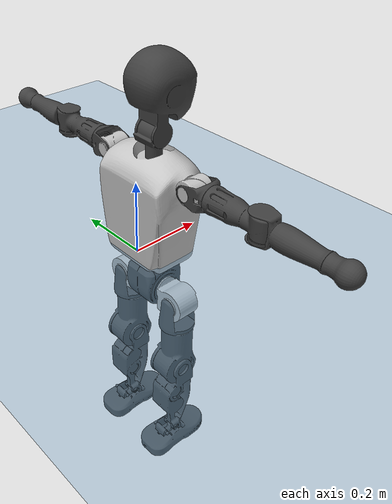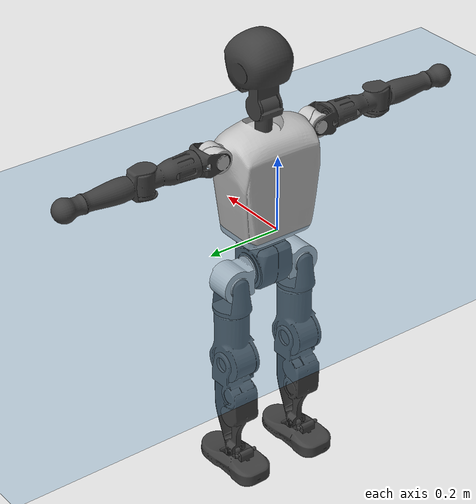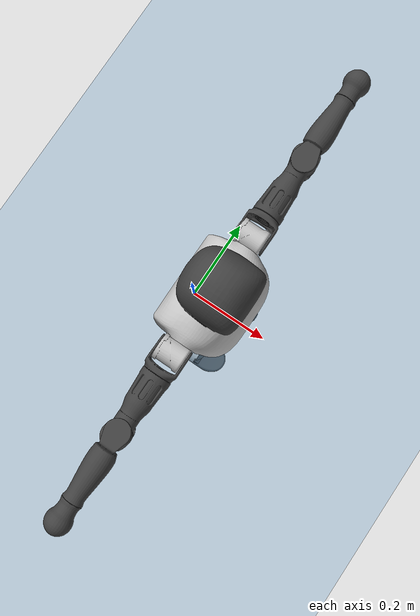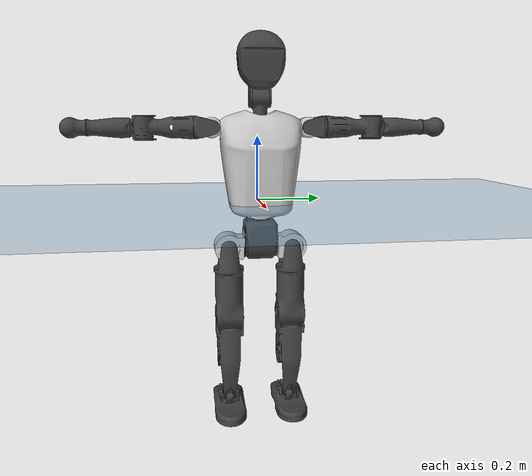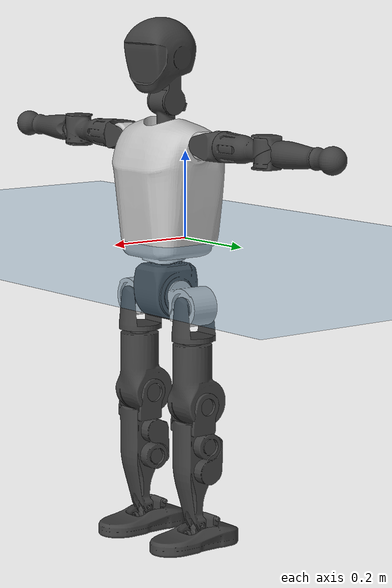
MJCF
<mujoco model="T1">
  <compiler angle="radian" assetdir="assets" balanceinertia="true" inertiafromgeom="false"/>

  <option timestep="0.005" density="1.2" viscosity="2e-05"/>

  <size nkey="1"/>

  <visual>
    <quality shadowsize="8192"/>
    <map shadowclip="0.5"/>
  </visual>

  <default>
    <default class="/">
      <joint armature="0.01" damping="0.01" frictionloss="0.1"/>
      <geom contype="0" conaffinity="0" group="1" solref="-1000 -80"/>
      <site size="0.01 0.005 0.005" group="5"/>
      <general forcelimited="true" biastype="affine" gainprm="25" biasprm="0 -25 -0.6"/>
      <default class="t1">
        <geom rgba="0.25 0.25 0.25 1"/>
        <default class="visual">
          <geom type="mesh" group="2"/>
        </default>
        <default class="collision">
          <geom group="3"/>
        </default>
        <default class="foot">
          <geom size="0.1115 0.05 0.015" type="box" condim="6" group="4" priority="1" solimp="0.015 1 0.015"/>
        </default>
        <default class="reward_collision_sphere">
          <geom group="5" rgba="1 0 0 1"/>
        </default>
      </default>
    </default>
  </default>

  <asset>
    <texture type="skybox" colorspace="auto" name="//unnamed_texture_0" builtin="gradient" rgb1="0.95 0.95 0.95" rgb2="0.95 0.95 0.95" width="100" height="600"/>
    <texture type="2d" colorspace="auto" name="texplane" builtin="checker" rgb1="0.345 0.575 0.748" rgb2="0.345 0.575 0.748" markrgb="1 1 1" width="512" height="512"/>
    <material name="MatPlane" class="/" texture="texplane" texuniform="true" texrepeat="2 2" specular="0.9"/>
    <mesh name="Trunk" class="/" file="Trunk.stl"/>
    <mesh name="H1" class="/" file="H1.stl"/>
    <mesh name="H2" class="/" file="H2.stl"/>
    <mesh name="AL1" class="/" file="AL1.stl"/>
    <mesh name="AL2" class="/" file="AL2.stl"/>
    <mesh name="AL3" class="/" file="AL3.stl"/>
    <mesh name="left_hand_link" class="/" file="left_hand_link.stl"/>
    <mesh name="AR1" class="/" file="AR1.stl"/>
    <mesh name="AR2" class="/" file="AR2.stl"/>
    <mesh name="AR3" class="/" file="AR3.stl"/>
    <mesh name="right_hand_link" class="/" file="right_hand_link.stl"/>
    <mesh name="Waist" class="/" file="Waist.stl"/>
    <mesh name="Hip_Pitch_Left" class="/" file="Hip_Pitch_Left.stl"/>
    <mesh name="Hip_Roll_Left" class="/" file="Hip_Roll_Left.stl"/>
    <mesh name="Hip_Yaw_Left" class="/" file="Hip_Yaw_Left.stl"/>
    <mesh name="Shank_Left" class="/" file="Shank_Left.stl"/>
    <mesh name="Ankle_Cross_Left" class="/" file="Ankle_Cross_Left.stl"/>
    <mesh name="left_foot_link" class="/" file="left_foot_link.stl"/>
    <mesh name="Hip_Pitch_Right" class="/" file="Hip_Pitch_Right.stl"/>
    <mesh name="Hip_Roll_Right" class="/" file="Hip_Roll_Right.stl"/>
    <mesh name="Hip_Yaw_Right" class="/" file="Hip_Yaw_Right.stl"/>
    <mesh name="Shank_Right" class="/" file="Shank_Right.stl"/>
    <mesh name="Ankle_Cross_Right" class="/" file="Ankle_Cross_Right.stl"/>
    <mesh name="right_foot_link" class="/" file="right_foot_link.stl"/>
  </asset>

  <worldbody>
    <geom name="floor" class="/" size="100 100 0.125" type="plane" group="0" material="MatPlane"/>
    <light name="toplight_shadow" class="/" pos="0 0 5" dir="0.0990148 0.0990148 -0.990148" type="directional" ambient="0.04 0.04 0.04" diffuse="0.55 0.55 0.55" specular="0.12 0.12 0.12"/>
    <light name="toplight_fill" class="/" pos="0 0 5" dir="0.0990148 0.0990148 -0.990148" type="directional" castshadow="false" ambient="0.04 0.04 0.04" diffuse="0.3 0.3 0.3" specular="0.08 0.08 0.08"/>
    <body name="trunk" childclass="t1" pos="0.000217364 0.000672136 -0.000170295" quat="1 -2.11281e-05 5.95691e-06 -1.19245e-05">
      <inertial pos="0.0488312 -6.83181e-05 0.109814" quat="0.99995 0.000946264 -0.00996553 0.000671048" mass="10.284" diaginertia="0.0495544 0.0570148 0.0669056"/>
      <joint name="//unnamed_joint_0" type="free" armature="0" damping="0" frictionloss="0"/>
      <geom name="//unnamed_geom_1" class="visual" rgba="0.76 0.76 0.76 1" mesh="Trunk"/>
      <geom name="//unnamed_geom_2" class="collision" size="0.0716704 0.0955605 0.143341" pos="0.0531637 0 0.124768" type="box"/>
      <geom name="//unnamed_geom_3" class="reward_collision_sphere" size="0.109895" pos="0.0531637 0 0.103973"/>
      <geom name="//unnamed_geom_4" class="reward_collision_sphere" size="0.0143341" pos="0.0531637 0.0799867 0"/>
      <geom name="//unnamed_geom_5" class="reward_collision_sphere" size="0.0143341" pos="0.0531637 -0.0799867 0"/>
      <geom name="//unnamed_geom_6" class="reward_collision_sphere" size="0.0143341" pos="0.0531637 0.100689 0.187152"/>
      <geom name="//unnamed_geom_7" class="reward_collision_sphere" size="0.0143341" pos="0.0531637 -0.100689 0.187152"/>
      <site name="imu" pos="-0.00428728 0.00243542 0.00427699" size="0.00955605"/>
      <camera name="track" pos="0 -1.88204 0" quat="0.707107 0.707107 0 0" mode="trackcom"/>
      <camera name="ego_camera" pos="0.1081 0 0.436688" quat="-0.5 -0.5 0.5 0.5"/>
      <body name="H1" pos="0.0558075 -0.000801391 0.252133" quat="1 -1.40941e-06 -0.00012917 6.7626e-05">
        <inertial pos="-0.000147074 -0.00135479 0.0591963" quat="0.763937 -0.013073 0.00169729 0.645156" mass="0.379833" diaginertia="0.000129277 0.000163302 0.000182457"/>
        <joint name="AAHead_yaw" pos="0 0 0" axis="-0.000189565 -0.000117274 1" range="-1.57785 1.5658" armature="0.00997072" damping="0.00951949" frictionloss="0.0961652"/>
        <geom name="//unnamed_geom_8" class="visual" mesh="H1"/>
        <body name="H2" pos="-0.00116368 -4.07475e-05 0.0634998" quat="1 0.000193911 9.47969e-05 9.08338e-05">
          <inertial pos="0.00621024 0.00050265 0.10249" quat="0.988323 0.107669 -0.0748307 -0.0776266" mass="0.551765" diaginertia="0.00111079 0.0014306 0.00210512"/>
          <joint name="Head_pitch" pos="0 0 0" axis="4.63754e-05 -0.999997 -0.00228355" range="-1.22381 0.353997" armature="0.00948908" damping="0.00604046" frictionloss="0.0992717"/>
          <geom name="//unnamed_geom_9" class="visual" mesh="H2"/>
          <geom name="//unnamed_geom_10" class="collision" size="0.0764484" pos="0.00886062 0 0.114371"/>
          <geom name="//unnamed_geom_11" class="reward_collision_sphere" size="0.0860045" pos="0.0177212 0 0.103973"/>
        </body>
      </body>
      <body name="AL1" pos="0.0515215 0.100253 0.227249" quat="1 1.9478e-06 0.000438345 -9.77784e-06">
        <inertial pos="-0.000904543 0.0419332 -0.000392119" quat="0.504599 0.495999 -0.50439 0.494929" mass="0.459411" diaginertia="0.00074502 0.000949718 0.000357545"/>
        <joint name="Left_Shoulder_Pitch" pos="0 0 0" axis="0.000178479 0.999995 -0.00301393" stiffness="0.00196695" range="-3.30218 1.2329" armature="0.00936869" damping="0.00811093" frictionloss="0.0958727"/>
        <geom name="//unnamed_geom_12" class="visual" rgba="0.76 0.76 0.76 1" mesh="AL1"/>
        <body name="AL2" pos="0.00139052 0.0450867 0.000837891" quat="1 -5.71863e-05 1.26035e-05 -2.64249e-05">
          <inertial pos="0.00261304 0.0362464 0.000315581" quat="0.485375 0.512017 -0.48783 0.514073" mass="0.140822" diaginertia="0.000220584 0.000255737 0.000214845"/>
          <joint name="Left_Shoulder_Roll" pos="0 0 0" axis="-0.999996 -0.00182796 -0.00234375" range="-1.57291 1.74273" armature="0.00947343" damping="0.00379891" frictionloss="0.0952601"/>
          <geom name="//unnamed_geom_13" class="visual" mesh="AL2"/>
          <body name="AL3" pos="0.000820571 0.0575985 -0.000193754" quat="1 2.52943e-05 2.15965e-05 4.93362e-05">
            <inertial pos="0.000643213 0.0803711 -0.000406018" quat="0.705539 0.708671 0.000250089 0.000180914" mass="0.88749" diaginertia="0.00693849 0.00940584 0.000743631"/>
            <joint name="Left_Elbow_Pitch" pos="0 0 0" axis="0.000307328 -0.999999 0.00124061" range="-2.27726 2.26113" armature="0.00955823" damping="0.0131916" frictionloss="0.0973592"/>
            <geom name="//unnamed_geom_14" class="visual" mesh="AL3"/>
            <geom name="//unnamed_geom_15" class="collision" size="0.0286682 0.0716704" pos="0 0.047051 0" quat="0.707105 0.707108 0 0" type="cylinder"/>
            <geom name="//unnamed_geom_16" class="reward_collision_sphere" size="0.0344018"/>
            <body name="left_hand_link" pos="0.000378222 0.137833 -0.000410224" quat="1 3.24222e-05 3.5039e-05 -0.000139879">
              <inertial pos="-0.000157812 0.104126 0.000845791" quat="0.707901 0.706311 0.000657252 -0.000105955" mass="0.285189" diaginertia="0.00443662 0.00597304 0.000259145"/>
              <joint name="Left_Elbow_Yaw" pos="0 0 0" axis="-0.00145603 0.00323788 0.999994" stiffness="0.00246556" range="-2.43795 -0.00729042" armature="0.00908995" damping="0.00903186" frictionloss="0.0953542"/>
              <geom name="//unnamed_geom_17" class="visual" mesh="left_hand_link"/>
              <geom name="//unnamed_geom_18" class="collision" size="0.0286682 0.0836155" pos="0 0.122333 0" quat="0.707105 0.707108 0 0" type="cylinder"/>
              <geom name="//unnamed_geom_19" class="reward_collision_sphere" size="0.0477803"/>
              <geom name="//unnamed_geom_20" class="reward_collision_sphere" size="0.0334462" pos="0 0.103512 0"/>
              <geom name="//unnamed_geom_21" class="reward_collision_sphere" size="0.0334462" pos="0 0.202319 0"/>
            </body>
          </body>
        </body>
      </body>
      <body name="AR1" pos="0.05048 -0.100249 0.227101" quat="1 0.000166101 0.000238702 -0.000159584">
        <inertial pos="-0.00106144 -0.0420374 -0.000545802" quat="0.503996 0.49516 -0.50432 0.496453" mass="0.464203" diaginertia="0.000755427 0.000960132 0.000356622"/>
        <joint name="Right_Shoulder_Pitch" pos="0 0 0" axis="-0.00327973 -0.999991 0.00268229" stiffness="0.000113086" range="-1.24428 3.3093" armature="0.00948132" damping="0.00716028" frictionloss="0.0976448"/>
        <geom name="//unnamed_geom_22" class="visual" rgba="0.76 0.76 0.76 1" mesh="AR1"/>
        <body name="AR2" pos="-0.000466653 -0.0439524 9.63275e-05" quat="1 -6.85823e-05 -1.51992e-05 6.3542e-05">
          <inertial pos="0.00352712 -0.0355897 7.4001e-05" quat="0.514469 0.486361 -0.509236 0.48934" mass="0.141194" diaginertia="0.000221202 0.000255186 0.00021695"/>
          <joint name="Right_Shoulder_Roll" pos="0 0 0" axis="-0.999953 0.00417435 0.00875496" range="-1.73036 1.58229" armature="0.00957283" damping="0.00810552" frictionloss="0.0952475"/>
          <geom name="//unnamed_geom_23" class="visual" mesh="AR2"/>
          <body name="AR3" pos="0.000628088 -0.0570776 0.000313515" quat="1 -8.36727e-05 -5.22084e-05 1.63346e-05">
            <inertial pos="0.000364843 -0.0806617 -0.000496684" quat="0.708564 0.705644 0.000506412 -0.00178175" mass="0.893249" diaginertia="0.00713934 0.00960198 0.00077045"/>
            <joint name="Right_Elbow_Pitch" pos="0 0 0" axis="0.00454324 0.999989 -0.000725855" range="-2.27062 2.24962" armature="0.00959832" damping="0.00678554" frictionloss="0.0924823"/>
            <geom name="//unnamed_geom_24" class="visual" mesh="AR3"/>
            <geom name="//unnamed_geom_25" class="collision" size="0.0286682 0.0716704" pos="0 -0.047051 0" quat="0.707105 0.707108 0 0" type="cylinder"/>
            <geom name="//unnamed_geom_26" class="reward_collision_sphere" size="0.0344018"/>
            <body name="right_hand_link" pos="0.000620463 -0.137422 -0.000588079" quat="1 -0.000123365 6.69062e-05 -7.05111e-05">
              <inertial pos="-2.43951e-05 -0.103023 0.00130682" quat="0.706367 0.707845 0.000225639 5.29323e-05" mass="0.28441" diaginertia="0.00437467 0.00601843 0.000259413"/>
              <joint name="Right_Elbow_Yaw" pos="0 0 0" axis="0.000198419 0.00101616 0.999999" range="0.00258592 2.44445" armature="0.00958397" damping="0.00837683" frictionloss="0.0952946"/>
              <geom name="//unnamed_geom_27" class="visual" mesh="right_hand_link"/>
              <geom name="//unnamed_geom_28" class="collision" size="0.0286682 0.0836155" pos="0 -0.122333 0" quat="0.707105 0.707108 0 0" type="cylinder"/>
              <geom name="//unnamed_geom_29" class="reward_collision_sphere" size="0.0477803"/>
              <geom name="//unnamed_geom_30" class="reward_collision_sphere" size="0.0334462" pos="0 -0.103512 0"/>
              <geom name="//unnamed_geom_31" class="reward_collision_sphere" size="0.0334462" pos="0 -0.202319 0"/>
            </body>
          </body>
        </body>
      </body>
      <body name="Waist" pos="0.0561213 -0.00129715 -0.120607" quat="1 6.04355e-05 0.00013386 0.000180722">
        <inertial pos="0.00194993 -0.00117072 0.00755551" quat="0.983788 0.00428248 -0.17927 0.00225024" mass="2.2919" diaginertia="0.0029523 0.00399249 0.00587936"/>
        <joint name="Waist" pos="0 0 0" axis="0.000688021 -0.000423478 1" range="-1.56088 1.57697" armature="0.00948355" damping="0.00410489" frictionloss="0.0915717"/>
        <geom name="//unnamed_geom_32" class="visual" mesh="Waist"/>
        <body name="Hip_Pitch_Left" pos="-0.000419706 0.100121 0.000186311" quat="1 7.15536e-06 0.000176329 -0.000101078">
          <inertial pos="0.000827808 -0.00720169 -0.0188213" quat="0.975162 0.221002 0.0145805 0.00186196" mass="0.89465" diaginertia="0.000992649 0.00108444 0.00153352"/>
          <joint name="Left_Hip_Pitch" pos="0 0 0" axis="0.00228342 0.999997 -0.000917" range="-1.79212 1.5648" armature="0.00937416" damping="0.00955839" frictionloss="0.0962144"/>
          <geom name="//unnamed_geom_33" class="visual" rgba="0.76 0.76 0.76 1" mesh="Hip_Pitch_Left"/>
          <body name="Hip_Roll_Left" pos="0.000735326 -0.000526343 -0.0205498" quat="1 0.000141799 0.000251281 -1.26707e-05">
            <inertial pos="0.000916533 -3.12227e-06 -0.055432" quat="0.707031 -0.00588964 -0.00577401 0.707134" mass="0.338935" diaginertia="0.00094445 0.00111856 0.00062146"/>
            <joint name="Left_Hip_Roll" pos="0 0 0" axis="-0.999999 -0.00091083 -0.000952889" range="-1.56192 0.203706" armature="0.00975968" damping="0.0103109" frictionloss="0.0953291"/>
            <geom name="//unnamed_geom_34" class="visual" mesh="Hip_Roll_Left"/>
            <geom name="//unnamed_geom_35" class="reward_collision_sphere" size="0.0525583"/>
            <body name="Hip_Yaw_Left" pos="0.000638177 -0.000467864 -0.0846375" quat="1 -1.13997e-05 -3.72294e-06 -2.37875e-05">
              <inertial pos="-0.00525645 -0.000300442 -0.0928655" quat="0.695547 -0.0345261 -0.0321498 0.71693" mass="1.89033" diaginertia="0.0139639 0.0184435 0.00309851"/>
              <joint name="Left_Hip_Yaw" pos="0 0 0" axis="0.00179907 -0.000748654 -0.999998" range="-1.01629 1.0233" armature="0.00912318" damping="0.00172135" frictionloss="0.0950132"/>
              <geom name="//unnamed_geom_36" class="visual" mesh="Hip_Yaw_Left"/>
              <geom name="//unnamed_geom_37" class="collision" size="0.0477803 0.0764484" type="cylinder"/>
              <body name="Shank_Left" pos="-0.0119027 2.33969e-05 -0.140075" quat="1 0.000154329 0.000224186 4.27351e-05">
                <inertial pos="-0.00495834 0.0003203 -0.128864" quat="0.9977 0.000498982 -0.0243679 0.0632467" mass="1.52566" diaginertia="0.0190877 0.025691 0.00230635"/>
                <joint name="Left_Knee_Pitch" pos="0 0 0" axis="0.0010944 0.999999 -0.000389845" range="-0.0195082 2.33793" armature="0.0096321" damping="0.0128383" frictionloss="0.0942242"/>
                <geom name="//unnamed_geom_38" class="visual" mesh="Shank_Left"/>
                <geom name="//unnamed_geom_39" class="collision" size="0.0477803 0.0716704" pos="0 0 -0.124768" type="cylinder"/>
                <geom name="//unnamed_geom_40" class="reward_collision_sphere" size="0.0621143"/>
                <body name="Ankle_Cross_Left" pos="0.000669139 0.000128483 -0.291017" quat="1 2.50074e-05 -0.000112649 5.54136e-05">
                  <inertial pos="-0.00319828 0.000237077 -0.00827865" quat="0.442729 0.551187 0.55123 0.443091" mass="0.064222" diaginertia="1.56699e-05 1.88418e-05 1.37719e-05"/>
                  <joint name="Left_Ankle_Pitch" pos="0 0 0" axis="0.00137155 0.999995 -0.00285028" range="-0.852627 0.358528" armature="0.00968097" damping="0.00776" frictionloss="0.0915884"/>
                  <geom name="//unnamed_geom_41" class="visual" mesh="Ankle_Cross_Left"/>
                  <body name="left_foot_link" pos="-0.000413127 -0.000496003 -0.0123356" quat="1 -7.9258e-05 -0.000159467 0.000194146">
                    <inertial pos="-0.000256711 0.000466662 -0.00932505" quat="-0.0018958 0.618716 -0.00217552 0.785609" mass="0.606645" diaginertia="0.00146375 0.00177738 0.00264786"/>
                    <joint name="Left_Ankle_Roll" pos="0 0 0" axis="-0.999999 0.00115655 0.000191173" range="-0.439046 0.437605" armature="0.00914804" damping="0.00835815" frictionloss="0.0956294"/>
                    <geom name="//unnamed_geom_42" class="visual" mesh="left_foot_link"/>
                    <geom name="left_foot" class="foot" size="0.100764 0.0497895 0.0145878" pos="0.00886062 0 -0.015596"/>
                    <geom name="//unnamed_geom_44" class="reward_collision_sphere" size="0.0496915" pos="0.00886062 0 -0.015596"/>
                    <geom name="//unnamed_geom_45" class="reward_collision_sphere" size="0.0286682" pos="0.0841759 -0.0216435 -0.015596"/>
                    <geom name="//unnamed_geom_46" class="reward_collision_sphere" size="0.0286682" pos="-0.0620244 -0.0216435 -0.015596"/>
                    <site name="left_foot" class="foot" pos="0.00886062 0 -0.015596" size="0.00955605"/>
                  </body>
                </body>
              </body>
            </body>
          </body>
        </body>
        <body name="Hip_Pitch_Right" pos="-0.000408309 -0.0994573 -0.000104165" quat="1 0.00019632 0.000413832 0.000133424">
          <inertial pos="0.000450421 0.00790584 -0.0195698" quat="0.97343 -0.228479 0.0145828 -0.00422504" mass="0.889025" diaginertia="0.00098256 0.0010759 0.00149587"/>
          <joint name="Right_Hip_Pitch" pos="0 0 0" axis="0.00102245 -0.999999 0.000979753" stiffness="0.00102329" range="-1.57122 1.79664" armature="0.0091125" damping="0.00845118" frictionloss="0.0972135"/>
          <geom name="//unnamed_geom_47" class="visual" rgba="0.76 0.76 0.76 1" mesh="Hip_Pitch_Right"/>
          <body name="Hip_Roll_Right" pos="0.000281317 -0.000125525 -0.0202217" quat="1 -3.01423e-05 3.86468e-05 -5.78202e-05">
            <inertial pos="0.0015528 -0.000268477 -0.0566616" quat="0.707992 -0.00583708 -0.00594541 0.706172" mass="0.332796" diaginertia="0.000941564 0.0010982 0.000617344"/>
            <joint name="Right_Hip_Roll" pos="0 0 0" axis="-1 -0.000400788 0.000316331" range="-0.202278 1.55925" armature="0.00977604" damping="0.00435402" frictionloss="0.0942975"/>
            <geom name="//unnamed_geom_48" class="visual" mesh="Hip_Roll_Right"/>
            <geom name="//unnamed_geom_49" class="reward_collision_sphere" size="0.0525583"/>
            <body name="Hip_Yaw_Right" pos="0.000779693 0.000944022 -0.085739" quat="1 -0.000336261 0.000226342 -0.000224769">
              <inertial pos="-0.00627516 0.000655252 -0.0937598" quat="0.715911 -0.0296787 -0.0359884 0.696631" mass="1.88854" diaginertia="0.0139918 0.0184997 0.00313686"/>
              <joint name="Right_Hip_Yaw" pos="0 0 0" axis="-0.000505803 -0.00119178 -0.999999" range="-1.00893 0.999449" armature="0.00990731" damping="0.00335174" frictionloss="0.0944016"/>
              <geom name="//unnamed_geom_50" class="visual" mesh="Hip_Yaw_Right"/>
              <geom name="//unnamed_geom_51" class="collision" size="0.0477803 0.0764484" type="cylinder"/>
              <body name="Shank_Right" pos="-0.0114095 -0.000724136 -0.138765" quat="1 -0.000376324 9.45796e-05 0.000290754">
                <inertial pos="-0.00595318 -0.000495498 -0.127224" quat="0.999274 0.000136006 -0.0232419 -0.030178" mass="1.5751" diaginertia="0.0191054 0.0258424 0.00236899"/>
                <joint name="Right_Knee_Pitch" pos="0 0 0" axis="-0.00310305 -0.999993 0.00194998" range="-2.34052 -0.0210089" armature="0.00960363" damping="0.00784726" frictionloss="0.0970238"/>
                <geom name="//unnamed_geom_52" class="visual" mesh="Shank_Right"/>
                <geom name="//unnamed_geom_53" class="collision" size="0.0477803 0.0716704" pos="0 0 -0.124768" type="cylinder"/>
                <geom name="//unnamed_geom_54" class="reward_collision_sphere" size="0.0621143"/>
                <body name="Ankle_Cross_Right" pos="-0.00139168 -0.000636276 -0.291173" quat="1 5.04136e-05 -0.000106268 -0.000191871">
                  <inertial pos="-0.00316198 -0.000246343 -0.00828019" quat="0.443294 0.550839 0.551124 0.44309" mass="0.063604" diaginertia="1.56712e-05 1.89178e-05 1.39114e-05"/>
                  <joint name="Right_Ankle_Pitch" pos="0 0 0" axis="0.000591841 -0.99999 -0.00445693" range="-0.367048 0.86668" armature="0.00940729" damping="0.00685253" frictionloss="0.0943133"/>
                  <geom name="//unnamed_geom_55" class="visual" mesh="Ankle_Cross_Right"/>
                  <body name="right_foot_link" pos="-0.00042662 -0.000873521 -0.0130168" quat="1 2.64135e-06 -3.16263e-06 4.41686e-06">
                    <inertial pos="7.49254e-05 -0.000610679 -0.00937902" quat="0.00240477 0.622273 -0.000877904 0.782796" mass="0.600123" diaginertia="0.00145523 0.00174951 0.00264268"/>
                    <joint name="Right_Ankle_Roll" pos="0 0 0" axis="-0.999999 -0.00103555 0.00100946" range="-0.447859 0.455642" armature="0.00937483" damping="0.00596596" frictionloss="0.093604"/>
                    <geom name="//unnamed_geom_56" class="visual" mesh="right_foot_link"/>
                    <geom name="right_foot" class="foot" size="0.0987745 0.0457491 0.0143074" pos="0.00886062 0 -0.015596"/>
                    <geom name="//unnamed_geom_58" class="reward_collision_sphere" size="0.0382242"/>
                    <geom name="//unnamed_geom_59" class="reward_collision_sphere" size="0.0286682" pos="0.00886062 0 -0.015596"/>
                    <geom name="//unnamed_geom_60" class="reward_collision_sphere" size="0.0286682" pos="0.0841759 0.0216435 -0.015596"/>
                    <geom name="//unnamed_geom_61" class="reward_collision_sphere" size="0.0286682" pos="-0.0620244 0.0216435 -0.015596"/>
                    <site name="right_foot" class="foot" pos="0.00886062 0 -0.015596" size="0.00955605"/>
                  </body>
                </body>
              </body>
            </body>
          </body>
        </body>
      </body>
    </body>
  </worldbody>

  <contact>
    <pair class="/" geom1="floor" geom2="left_foot" name="//unnamed_contact_0"/>
    <pair class="/" geom1="floor" geom2="right_foot" name="//unnamed_contact_1"/>
  </contact>

  <actuator>
    <general name="AAHead_yaw" class="/" joint="AAHead_yaw" forcerange="-6.63213 6.63213" gainprm="23.4937" biasprm="0 -23.4937 -0.551643"/>
    <general name="Head_pitch" class="/" joint="Head_pitch" forcerange="-6.74189 6.74189" gainprm="23.4937" biasprm="0 -23.4937 -0.551643"/>
    <general name="Left_Shoulder_Pitch" class="/" joint="Left_Shoulder_Pitch" forcerange="-16.5527 16.5527" gainprm="23.4937" biasprm="0 -23.4937 -0.551643"/>
    <general name="Left_Shoulder_Roll" class="/" joint="Left_Shoulder_Roll" forcerange="-17.1033 17.1033" gainprm="23.4937" biasprm="0 -23.4937 -0.551643"/>
    <general name="Left_Elbow_Pitch" class="/" joint="Left_Elbow_Pitch" forcerange="-17.6548 17.6548" gainprm="23.4937" biasprm="0 -23.4937 -0.551643"/>
    <general name="Left_Elbow_Yaw" class="/" joint="Left_Elbow_Yaw" forcerange="-17.2086 17.2086" gainprm="23.4937" biasprm="0 -23.4937 -0.551643"/>
    <general name="Right_Shoulder_Pitch" class="/" joint="Right_Shoulder_Pitch" forcerange="-17.0716 17.0716" gainprm="23.4937" biasprm="0 -23.4937 -0.551643"/>
    <general name="Right_Shoulder_Roll" class="/" joint="Right_Shoulder_Roll" forcerange="-17.2019 17.2019" gainprm="23.4937" biasprm="0 -23.4937 -0.551643"/>
    <general name="Right_Elbow_Pitch" class="/" joint="Right_Elbow_Pitch" forcerange="-17.7621 17.7621" gainprm="23.4937" biasprm="0 -23.4937 -0.551643"/>
    <general name="Right_Elbow_Yaw" class="/" joint="Right_Elbow_Yaw" forcerange="-17.6247 17.6247" gainprm="23.4937" biasprm="0 -23.4937 -0.551643"/>
    <general name="Waist" class="/" joint="Waist" forcerange="-29.562 29.562" gainprm="23.4937" biasprm="0 -23.4937 -0.551643"/>
    <general name="Left_Hip_Pitch" class="/" joint="Left_Hip_Pitch" forcerange="-43.4092 43.4092" gainprm="23.4937" biasprm="0 -23.4937 -0.551643"/>
    <general name="Left_Hip_Roll" class="/" joint="Left_Hip_Roll" forcerange="-29.4097 29.4097" gainprm="23.4937" biasprm="0 -23.4937 -0.551643"/>
    <general name="Left_Hip_Yaw" class="/" joint="Left_Hip_Yaw" forcerange="-29.4978 29.4978" gainprm="23.4937" biasprm="0 -23.4937 -0.551643"/>
    <general name="Left_Knee_Pitch" class="/" joint="Left_Knee_Pitch" forcerange="-56.587 56.587" gainprm="23.4937" biasprm="0 -23.4937 -0.551643"/>
    <general name="Left_Ankle_Pitch" class="/" joint="Left_Ankle_Pitch" forcerange="-19.2929 19.2929" gainprm="23.4937" biasprm="0 -23.4937 -0.551643"/>
    <general name="Left_Ankle_Roll" class="/" joint="Left_Ankle_Roll" forcerange="-14.4448 14.4448" gainprm="23.4937" biasprm="0 -23.4937 -0.551643"/>
    <general name="Right_Hip_Pitch" class="/" joint="Right_Hip_Pitch" forcerange="-42.7086 42.7086" gainprm="23.4937" biasprm="0 -23.4937 -0.551643"/>
    <general name="Right_Hip_Roll" class="/" joint="Right_Hip_Roll" forcerange="-28.4501 28.4501" gainprm="23.4937" biasprm="0 -23.4937 -0.551643"/>
    <general name="Right_Hip_Yaw" class="/" joint="Right_Hip_Yaw" forcerange="-29.5467 29.5467" gainprm="23.4937" biasprm="0 -23.4937 -0.551643"/>
    <general name="Right_Knee_Pitch" class="/" joint="Right_Knee_Pitch" forcerange="-59.1255 59.1255" gainprm="23.4937" biasprm="0 -23.4937 -0.551643"/>
    <general name="Right_Ankle_Pitch" class="/" joint="Right_Ankle_Pitch" forcerange="-19.2789 19.2789" gainprm="23.4937" biasprm="0 -23.4937 -0.551643"/>
    <general name="Right_Ankle_Roll" class="/" joint="Right_Ankle_Roll" forcerange="-14.0711 14.0711" gainprm="23.4937" biasprm="0 -23.4937 -0.551643"/>
  </actuator>

  <sensor>
    <gyro site="imu" name="imu_angular_velocity"/>
    <velocimeter site="imu" name="imu_linear_velocity"/>
    <framelinvel objtype="site" objname="left_foot" name="left_foot_global_linear_velocity"/>
    <framelinvel objtype="site" objname="right_foot" name="right_foot_global_linear_velocity"/>
  </sensor>

  <keyframe>
    <key name="home" qpos="0 0 0.6385 1 0 0 0 0 0 0 1.4 0 -0.4 0 -1.4 0 0.4 0 -0.4 0 0 0.8 -0.4 0 0.4 0 0 -0.8 0.4 0"/>
  </keyframe>
</mujoco>
